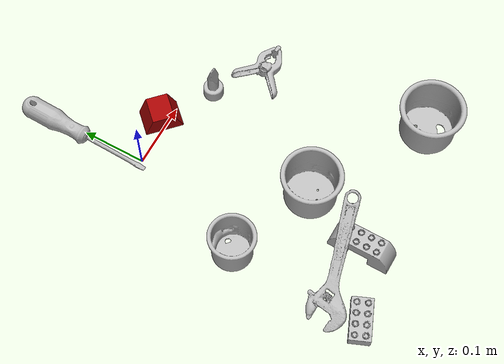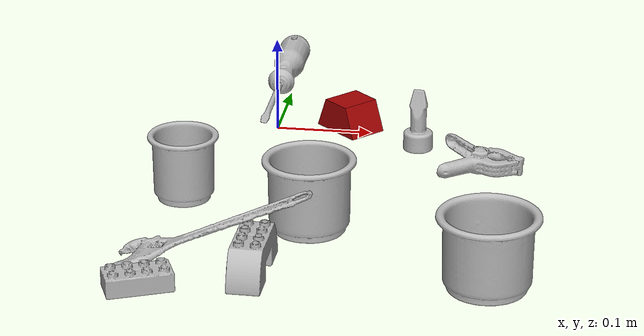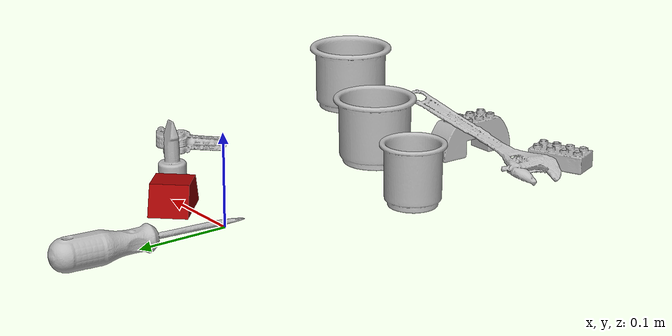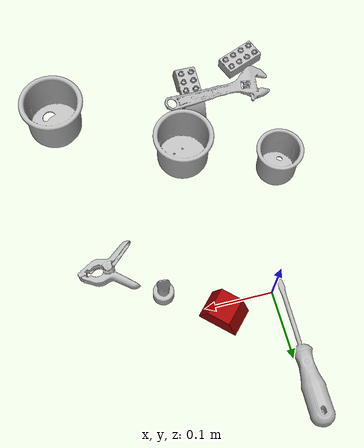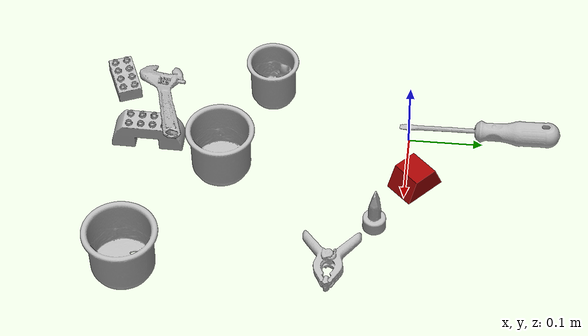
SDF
<sdf version="1.4">
  <world name="default">
    <light name="light1" type="point">
      <pose>0 0 1 0 0 0</pose>
      <diffuse>3 3 3 1</diffuse>
      <specular>3 3 3 1</specular>
    </light>
    <light name="light2" type="point">
      <pose>0 0.5 2 0 0 0</pose>
      <diffuse>1 1 1 1</diffuse>
      <specular>1 1 1 1</specular>
    </light>
    <light name="light3" type="point">
      <pose>0 0.5 2 0 0 0</pose>
      <diffuse>3 3 3 1</diffuse>
      <specular>3 3 3 1</specular>
    </light>
    <scene>
      <ambient>0.7 0.7 0.7</ambient>
    </scene>
    <model name="cup1">
      <link name="link_cup1">
        <collision name="default">
          <geometry>
            <mesh>
              <uri>model://d_cups/collision_meshes/collision.obj</uri>
              <scale>1.0 1.0 1.0</scale>
            </mesh>
          </geometry>
          <surface>
            <friction>
              <ode>
                <mu>0.5</mu>
                <mu2>0.5</mu2>
              </ode>
            </friction>
          <contact>
        <ode>
            <max_vel>0</max_vel>
            <min_depth>0.0001</min_depth>
            <kp>1e8</kp>
        </ode>
    </contact></surface>
        </collision>
        <visual name="default">
          <geometry>
            <mesh>
              <uri>model://d_cups/visual_meshes/visual.dae</uri>
              <scale>1.0 1.0 1.0</scale>
            </mesh>
          </geometry>
        </visual>
        <inertial>
          <mass>0.06783133745193481</mass>
          <pose>0.0008068059105426073 0.0019117397023364902 -0.002266651252284646 0.24012426461604838 -0.24709695541432683 0.5942481546461544</pose>
          <inertia>
            <ixx>5.679078e-05</ixx>
            <iyy>5.662642e-05</iyy>
            <izz>5.1405317e-05</izz>
            <ixy>0</ixy>
            <ixz>0</ixz>
            <iyz>0</iyz>
          </inertia>
        </inertial>
      </link>
      <pose>-0.06439360231161118 -0.19055870175361633 0.0346590019762516 8.179647778791912e-07 2.4900673266124607e-08 0.3053559564272726</pose>
    </model>
    <model name="cup2">
      <link name="link_cup2">
        <collision name="default">
          <geometry>
            <mesh>
              <uri>model://h_cups/collision_meshes/collision.obj</uri>
              <scale>1.0 1.0 1.0</scale>
            </mesh>
          </geometry>
          <surface>
            <friction>
              <ode>
                <mu>0.5</mu>
                <mu2>0.5</mu2>
              </ode>
            </friction>
          <contact>
        <ode>
            <max_vel>0</max_vel>
            <min_depth>0.0001</min_depth>
            <kp>1e8</kp>
        </ode>
    </contact></surface>
        </collision>
        <visual name="default">
          <geometry>
            <mesh>
              <uri>model://h_cups/visual_meshes/visual.dae</uri>
              <scale>1.0 1.0 1.0</scale>
            </mesh>
          </geometry>
        </visual>
        <inertial>
          <mass>0.0420527309179306</mass>
          <pose>-2.702834171941504e-05 0.0002301869390066713 -0.0018405404407531023 -0.02436231807299455 0.06545237013505961 0.1288477560592675</pose>
          <inertia>
            <ixx>5.430915e-05</ixx>
            <iyy>5.3661057e-05</iyy>
            <izz>5.69554e-05</izz>
            <ixy>0</ixy>
            <ixz>0</ixz>
            <iyz>0</iyz>
          </inertia>
        </inertial>
      </link>
      <pose>0.0697668194770813 -0.24598950147628784 0.0377579964697361 -2.7111748623909335e-08 1.0052050370366583e-07 1.8636569245683612</pose>
    </model>
    <model name="cup3">
      <link name="link_cup3">
        <collision name="default">
          <geometry>
            <mesh>
              <uri>model://i_cups/collision_meshes/collision.obj</uri>
              <scale>1.0 1.0 1.0</scale>
            </mesh>
          </geometry>
          <surface>
            <friction>
              <ode>
                <mu>0.5</mu>
                <mu2>0.5</mu2>
              </ode>
            </friction>
          <contact>
        <ode>
            <max_vel>0</max_vel>
            <min_depth>0.0001</min_depth>
            <kp>1e8</kp>
        </ode>
    </contact></surface>
        </collision>
        <visual name="default">
          <geometry>
            <mesh>
              <uri>model://i_cups/visual_meshes/visual.dae</uri>
              <scale>1.0 1.0 1.0</scale>
            </mesh>
          </geometry>
        </visual>
        <inertial>
          <mass>0.1172947883605957</mass>
          <pose>0.00011240218736929819 0.00016797319403849542 -0.0008579035638831556 -0.028982974239284674 -0.039873277979934216 -0.3459139003356122</pose>
          <inertia>
            <ixx>0.00016239638</ixx>
            <iyy>0.00016382721</iyy>
            <izz>0.00018150422</izz>
            <ixy>0</ixy>
            <ixz>0</ixz>
            <iyz>0</iyz>
          </inertia>
        </inertial>
      </link>
      <pose>0.25055575370788574 -0.3507457375526428 0.037774838507175446 0.0019455158388151947 -0.006345936591660134 1.7882874206205612</pose>
    </model>
    <model name="toy1">
      <link name="link_toy1">
        <collision name="default">
          <geometry>
            <mesh>
              <uri>model://prism/collision_meshes/collision.obj</uri>
              <scale>0.5 0.5 0.5</scale>
            </mesh>
          </geometry>
          <surface>
            <friction>
              <ode>
                <mu>0.5</mu>
                <mu2>0.5</mu2>
              </ode>
            </friction>
          <contact>
        <ode>
            <max_vel>0</max_vel>
            <min_depth>0.0001</min_depth>
            <kp>1e8</kp>
        </ode>
    </contact></surface>
        </collision>
        <visual name="default">
          <geometry>
            <mesh>
              <uri>model://prism/visual_meshes/visual.dae</uri>
              <scale>0.5 0.5 0.5</scale>
            </mesh>
          </geometry>
        </visual>
        <inertial>
          <mass>0.04854338616132736</mass>
          <pose>-4.92679828312248e-05 -2.480786349678965e-07 -0.0016934549203142524 0.0 0.006559181697473799 0.0</pose>
          <inertia>
            <ixx>1.0952453e-05</ixx>
            <iyy>1.3236178e-05</iyy>
            <izz>1.6212734e-05</izz>
            <ixy>0</ixy>
            <ixz>0</ixz>
            <iyz>0</iyz>
          </inertia>
        </inertial>
      </link>
      <pose>0.07681676000356674 0.012767399661242962 0.016084996983408928 7.873835278227048e-09 -8.38304147729586e-09 -0.7621963423994024</pose>
    </model>
    <model name="toy2">
      <link name="link_toy2">
        <collision name="default">
          <geometry>
            <mesh>
              <uri>model://e_toy_airplane/collision_meshes/collision.obj</uri>
              <scale>1.0 1.0 1.0</scale>
            </mesh>
          </geometry>
          <surface>
            <friction>
              <ode>
                <mu>0.5</mu>
                <mu2>0.5</mu2>
              </ode>
            </friction>
          <contact>
        <ode>
            <max_vel>0</max_vel>
            <min_depth>0.0001</min_depth>
            <kp>1e8</kp>
        </ode>
    </contact></surface>
        </collision>
        <visual name="default">
          <geometry>
            <mesh>
              <uri>model://e_toy_airplane/visual_meshes/visual.dae</uri>
              <scale>1.0 1.0 1.0</scale>
            </mesh>
          </geometry>
        </visual>
        <inertial>
          <mass>0.014407381415367126</mass>
          <pose>0.00011740459740394726 -2.2482932763523422e-05 -0.011187206022441387 0.005518488041491648 0.009228285270614433 0.15041380385765837</pose>
          <inertia>
            <ixx>4.397297e-06</ixx>
            <iyy>4.352315e-06</iyy>
            <izz>1.3215607e-06</izz>
            <ixy>0</ixy>
            <ixz>0</ixz>
            <iyz>0</iyz>
          </inertia>
        </inertial>
      </link>
      <pose>0.1541060209274292 -0.03519706055521965 0.033211976289749146 4.8178958124866215e-05 -0.0001313163301378069 1.354335193960241</pose>
    </model>
    <model name="toy3">
      <link name="link_toy3">
        <collision name="default">
          <geometry>
            <mesh>
              <uri>model://e_lego_duplo/collision_meshes/collision.obj</uri>
              <scale>1.0 1.0 1.0</scale>
            </mesh>
          </geometry>
          <surface>
            <friction>
              <ode>
                <mu>0.5</mu>
                <mu2>0.5</mu2>
              </ode>
            </friction>
          <contact>
        <ode>
            <max_vel>0</max_vel>
            <min_depth>0.0001</min_depth>
            <kp>1e8</kp>
        </ode>
    </contact></surface>
        </collision>
        <visual name="default">
          <geometry>
            <mesh>
              <uri>model://e_lego_duplo/visual_meshes/visual.dae</uri>
              <scale>1.0 1.0 1.0</scale>
            </mesh>
          </geometry>
        </visual>
        <inertial>
          <mass>0.059077512472867966</mass>
          <pose>0.00032560460385866463 0.0002348544221604243 0.0019521447829902172 -0.0225678114641467 -6.824730634042773e-05 -0.007625154901652298</pose>
          <inertia>
            <ixx>1.2319611e-05</ixx>
            <iyy>5.0562856e-05</iyy>
            <izz>4.923807e-05</izz>
            <ixy>0</ixy>
            <ixz>0</ixz>
            <iyz>0</iyz>
          </inertia>
        </inertial>
      </link>
      <pose>0.030779674649238586 -0.35024791955947876 0.021809076890349388 7.804635667207962e-06 1.4163618561437197e-06 -1.583776455616658</pose>
    </model>
    <model name="toy4">
      <link name="link_toy4">
        <collision name="default">
          <geometry>
            <mesh>
              <uri>model://c_lego_duplo/collision_meshes/collision.obj</uri>
              <scale>1.0 1.0 1.0</scale>
            </mesh>
          </geometry>
          <surface>
            <friction>
              <ode>
                <mu>0.5</mu>
                <mu2>0.5</mu2>
              </ode>
            </friction>
          <contact>
        <ode>
            <max_vel>0</max_vel>
            <min_depth>0.0001</min_depth>
            <kp>1e8</kp>
        </ode>
    </contact></surface>
        </collision>
        <visual name="default">
          <geometry>
            <mesh>
              <uri>model://c_lego_duplo/visual_meshes/visual.dae</uri>
              <scale>1.0 1.0 1.0</scale>
            </mesh>
          </geometry>
        </visual>
        <inertial>
          <mass>0.019630447030067444</mass>
          <pose>0.000316459103487432 0.00019464583601802588 0.0010453149443492293 -0.011520787241280632 0.0059000791517924015 0.031100331826339908</pose>
          <inertia>
            <ixx>7.554163e-06</ixx>
            <iyy>2.4130718e-06</iyy>
            <izz>8.827816e-06</izz>
            <ixy>0</ixy>
            <ixz>0</ixz>
            <iyz>0</iyz>
          </inertia>
        </inertial>
      </link>
      <pose>-0.06799811124801636 -0.39716675877571106 0.011976014822721481 0.008564176357614955 -0.0021768193519734525 -1.2086844326194364</pose>
    </model>
    <model name="hardware1">
      <link name="link_hardware1">
        <collision name="default">
          <geometry>
            <mesh>
              <uri>model://flat_screwdriver/collision_meshes/collision.obj</uri>
              <scale>1.0 1.0 1.0</scale>
            </mesh>
          </geometry>
          <surface>
            <friction>
              <ode>
                <mu>0.5</mu>
                <mu2>0.5</mu2>
              </ode>
            </friction>
          <contact>
        <ode>
            <max_vel>0</max_vel>
            <min_depth>0.0001</min_depth>
            <kp>1e8</kp>
        </ode>
    </contact></surface>
        </collision>
        <visual name="default">
          <geometry>
            <mesh>
              <uri>model://flat_screwdriver/visual_meshes/visual.dae</uri>
              <scale>1.0 1.0 1.0</scale>
            </mesh>
          </geometry>
        </visual>
        <inertial>
          <mass>0.05795019492506981</mass>
          <pose>-0.0489187128841877 -0.0006576800369657576 -0.0006140916375443339 -0.5616548332173045 -0.0032337243504420286 0.0069822829580931615</pose>
          <inertia>
            <ixx>6.846775e-06</ixx>
            <iyy>8.6921296e-05</iyy>
            <izz>8.688106e-05</izz>
            <ixy>0</ixy>
            <ixz>0</ixz>
            <iyz>0</iyz>
          </inertia>
        </inertial>
      </link>
      <pose>-0.010808983817696571 0.09625738859176636 0.015338651835918427 -0.21440997329816952 0.04069454247754817 -1.5981935726260812</pose>
    </model>
    <model name="hardware2">
      <link name="link_hardware2">
        <collision name="default">
          <geometry>
            <mesh>
              <uri>model://medium_clamp/collision_meshes/collision.obj</uri>
              <scale>1.0 1.0 1.0</scale>
            </mesh>
          </geometry>
          <surface>
            <friction>
              <ode>
                <mu>0.5</mu>
                <mu2>0.5</mu2>
              </ode>
            </friction>
          <contact>
        <ode>
            <max_vel>0</max_vel>
            <min_depth>0.0001</min_depth>
            <kp>1e8</kp>
        </ode>
    </contact></surface>
        </collision>
        <visual name="default">
          <geometry>
            <mesh>
              <uri>model://medium_clamp/visual_meshes/visual.dae</uri>
              <scale>1.0 1.0 1.0</scale>
            </mesh>
          </geometry>
        </visual>
        <inertial>
          <mass>0.028340468183159828</mass>
          <pose>0.0053909942507743835 0.0003953247796744108 -0.0001222157443407923 -0.001226920261124021 0.0025845025680982987 0.03820769890719856</pose>
          <inertia>
            <ixx>7.720961e-06</ixx>
            <iyy>1.1236185e-05</iyy>
            <izz>1.7307093e-05</izz>
            <ixy>0</ixy>
            <ixz>0</ixz>
            <iyz>0</iyz>
          </inertia>
        </inertial>
      </link>
      <pose>0.22172623872756958 -0.08822770416736603 0.013533111661672592 0.0773178619747901 0.08539219741285976 -0.025477159538829185</pose>
    </model>
    <model name="hardware3">
      <link name="link_hardware3">
        <collision name="default">
          <geometry>
            <mesh>
              <uri>model://adjustable_wrench/collision_meshes/collision.obj</uri>
              <scale>1.0 1.0 1.0</scale>
            </mesh>
          </geometry>
          <surface>
            <friction>
              <ode>
                <mu>0.5</mu>
                <mu2>0.5</mu2>
              </ode>
            </friction>
          <contact>
        <ode>
            <max_vel>0</max_vel>
            <min_depth>0.0001</min_depth>
            <kp>1e8</kp>
        </ode>
    </contact></surface>
        </collision>
        <visual name="default">
          <geometry>
            <mesh>
              <uri>model://adjustable_wrench/visual_meshes/visual.dae</uri>
              <scale>1.0 1.0 1.0</scale>
            </mesh>
          </geometry>
        </visual>
        <inertial>
          <mass>0.023935195058584213</mass>
          <pose>0.03740980476140976 -0.0028968877159059048 -0.001114922808483243 -0.014473210185193002 0.006656019736435525 -0.010954188403863873</pose>
          <inertia>
            <ixx>4.898683e-06</ixx>
            <iyy>5.733333e-05</iyy>
            <izz>6.197185e-05</izz>
            <ixy>0</ixy>
            <ixz>0</ixz>
            <iyz>0</iyz>
          </inertia>
        </inertial>
      </link>
      <pose>-0.015539135783910751 -0.3295038044452667 0.031400926411151886 -3.0206573856380157 0.32375906509311075 -2.8755198029390563</pose>
    </model>
  <physics type="ode">
      <max_contacts>50</max_contacts>
      <ode>
        <solver>
          <type>quick</type>
          <iters>75</iters>
        </solver>
        <constraints>
          <contact_max_correcting_vel>0</contact_max_correcting_vel>
          <contact_surface_layer>0</contact_surface_layer>
        </constraints>
      </ode>
    </physics></world>
</sdf>
